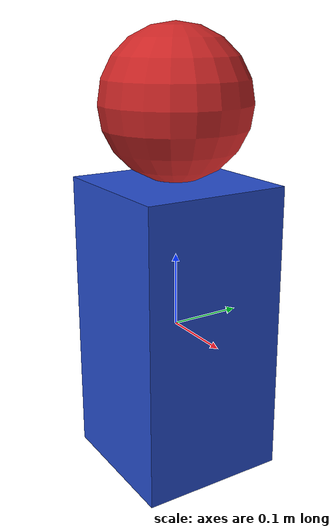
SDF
<?xml version='1.0'?>
<sdf version='1.6'>
  <model name='humanoid'>
    <link name='base_link'>
      <inertial>
        <mass>1.0</mass>
        <inertia>
          <ixx>0.04</ixx>
          <ixy>0.0</ixy>
          <ixz>0.0</ixz>
          <iyy>0.04</iyy>
          <iyz>0.0</iyz>
          <izz>0.04</izz>
        </inertia>
      </inertial>
      <visual name='visual'>
        <geometry>
          <box>
            <size>0.2 0.2 0.4</size>
          </box>
        </geometry>
        <material>
          <script>
            <uri>file://media/materials/scripts/gazebo.material</uri>
            <name>Gazebo/Blue</name>
          </script>
        </material>
      </visual>
      <collision name='collision'>
        <geometry>
          <box>
            <size>0.2 0.2 0.4</size>
          </box>
        </geometry>
      </collision>
    </link>

    <link name='head_link'>
      <pose>0 0 0.3 0 0 0</pose>
      <inertial>
        <mass>0.1</mass>
        <inertia>
          <ixx>0.001</ixx>
          <ixy>0.0</ixy>
          <ixz>0.0</ixz>
          <iyy>0.001</iyy>
          <iyz>0.0</iyz>
          <izz>0.001</izz>
        </inertia>
      </inertial>
      <visual name='visual'>
        <geometry>
          <sphere>
            <radius>0.1</radius>
          </sphere>
        </geometry>
        <material>
          <script>
            <uri>file://media/materials/scripts/gazebo.material</uri>
            <name>Gazebo/Red</name>
          </script>
        </material>
      </visual>
      <collision name='collision'>
        <geometry>
          <sphere>
            <radius>0.1</radius>
          </sphere>
        </geometry>
      </collision>
      <sensor name='depth_camera' type='depth'>
        <update_rate>30</update_rate>
        <camera>
          <horizontal_fov>1.047</horizontal_fov>
          <image>
            <width>640</width>
            <height>480</height>
            <format>R8G8B8</format>
          </image>
          <clip>
            <near>0.1</near>
            <far>10</far>
          </clip>
        </camera>
        <plugin name='depth_camera_plugin' filename='libgazebo_ros_depth_camera.so'>
          <alwaysOn>true</alwaysOn>
          <updateRate>30.0</updateRate>
          <cameraName>humanoid/depth_camera</cameraName>
          <imageTopicName>image_raw</imageTopicName>
          <cameraInfoTopicName>camer-info</cameraInfoTopicName>
          <depthImageTopicName>depth/image_raw</depthImageTopicName>
          <depthImageCameraInfoTopicName>depth/camer-info</depthImageCameraInfoTopicName>
          <pointCloudTopicName>depth/points</pointCloudTopicName>
          <frameName>depth_camera_link</frameName>
          <hackBaseline>0.07</hackBaseline>
          <distortionK1>0.0</distortionK1>
          <distortionK2>0.0</distortionK2>
          <distortionK3>0.0</distortionK3>
          <distortionT1>0.0</distortionT1>
          <distortionT2>0.0</distortionT2>
        </plugin>
      </sensor>
    </link>

    <joint name='head_joint' type='fixed'>
      <parent>base_link</parent>
      <child>head_link</child>
      <pose>0 0 0.3 0 0 0</pose>
    </joint>

  </model>
</sdf>
